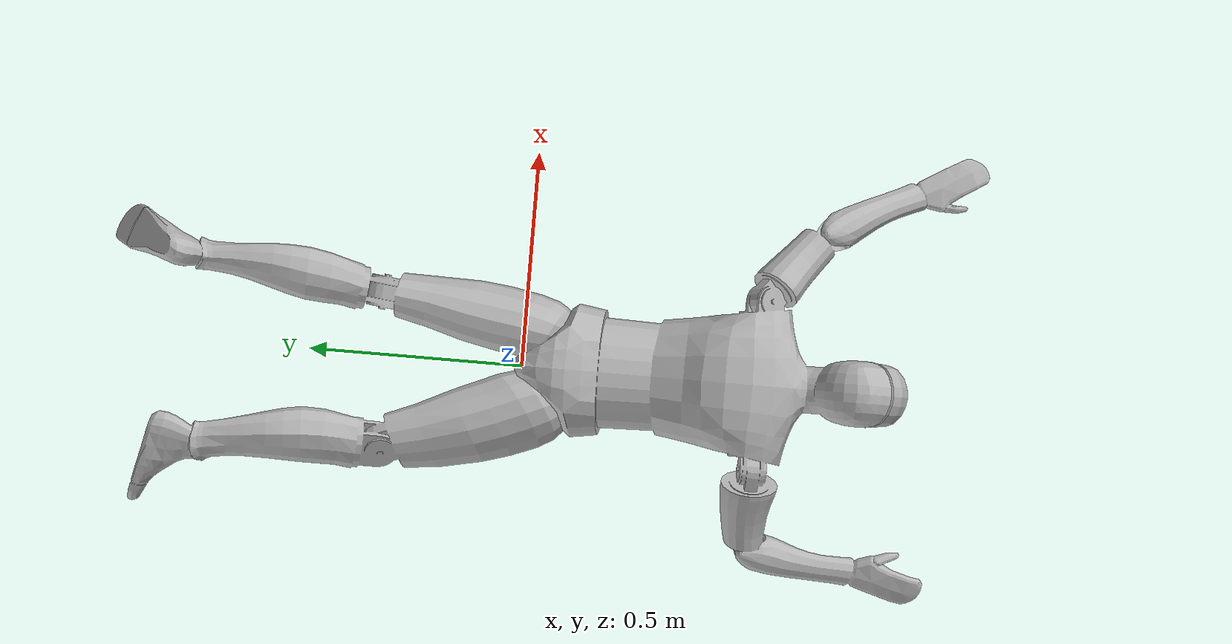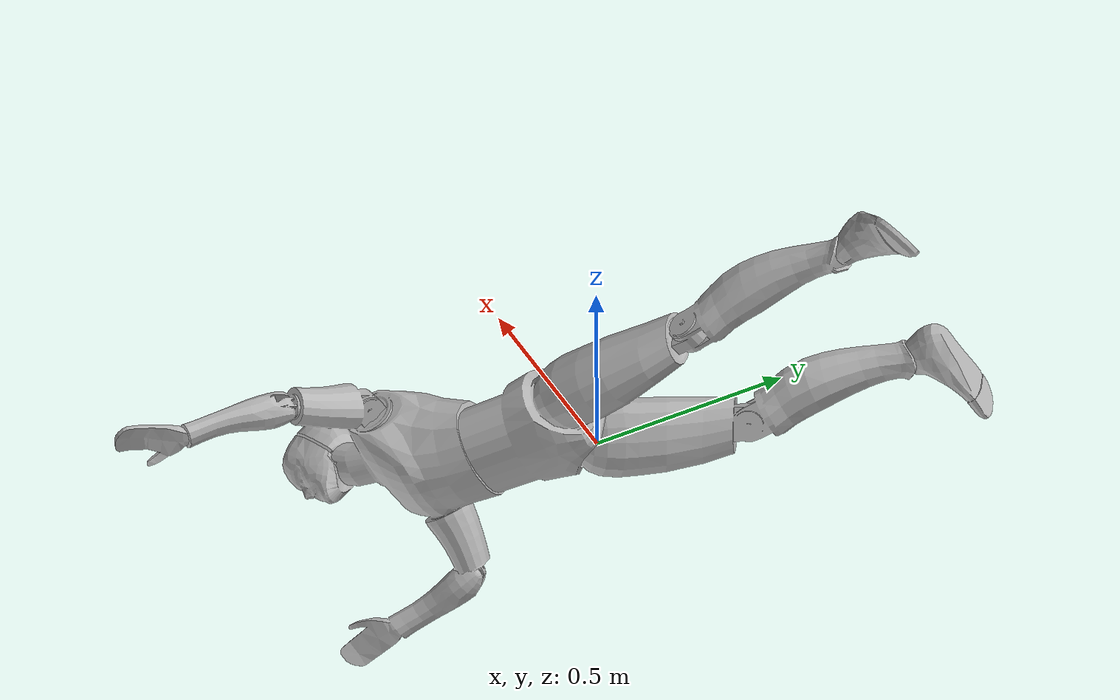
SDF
<?xml version='1.0' ?>
<sdf version='1.6'>
  <model name='Survivor Male'>
    <static>true</static>
    <link name='link'>
      <pose>0 0 -0.837 0 0 0</pose>
      <collision name='collision'>
        <geometry>
          <mesh>
            <uri>model://Survivor Male/meshes/Survivor Male.dae</uri>
          </mesh>
        </geometry>
      </collision>
      <visual name='visual'>
        <geometry>
          <mesh>
            <uri>model://Survivor Male/meshes/Survivor Male.dae</uri>
          </mesh>
        </geometry>
      </visual>
    </link>
  </model>
</sdf>
